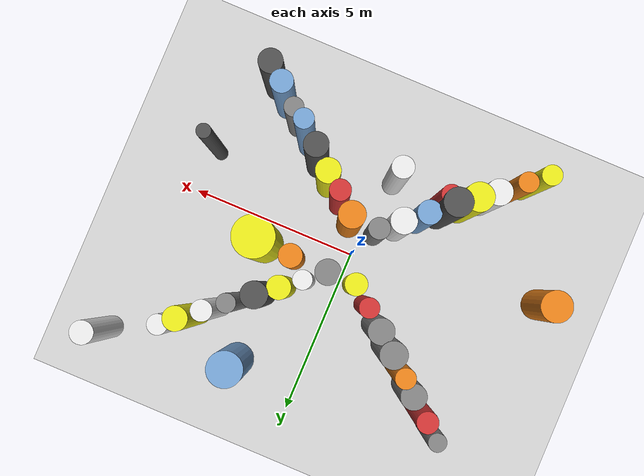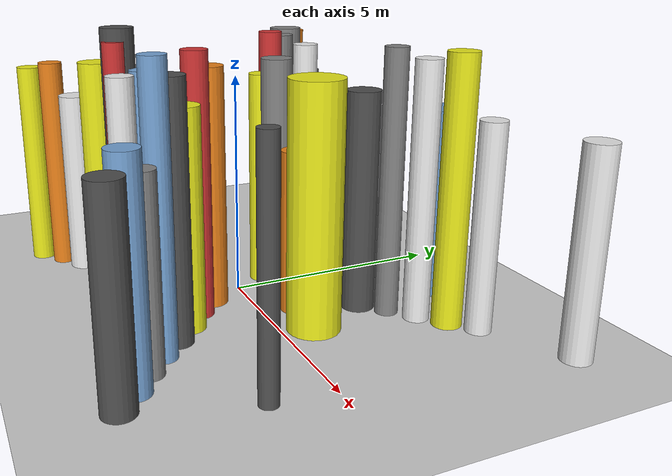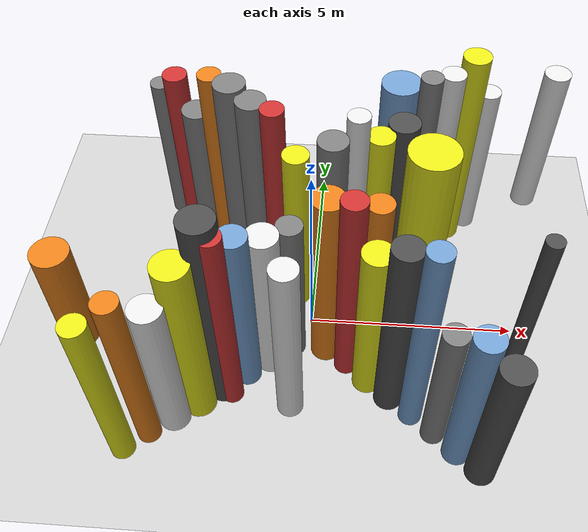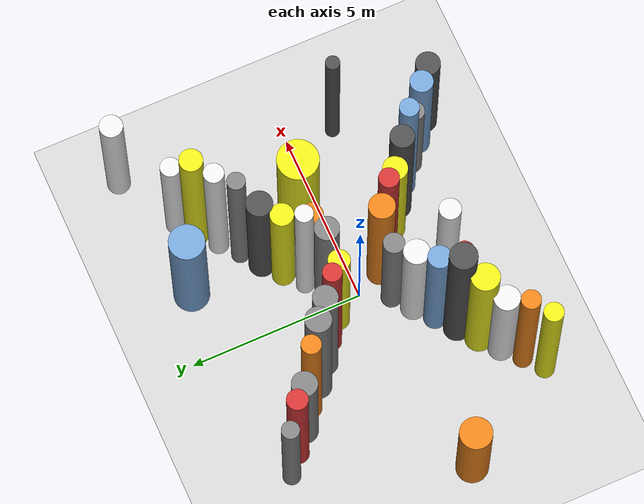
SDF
<?xml version='1.0'?>
<sdf version='1.6'>
  <world name='routeA_rl_v1__dense_recovery__rl_test__bottleneck_corridor__000112'>
    <!-- Sun light -->
    <light name='sun' type='directional'>
      <cast_shadows>1</cast_shadows>
      <pose>0 0 10 0 0 0</pose>
      <diffuse>0.8 0.8 0.8 1</diffuse>
      <specular>0.2 0.2 0.2 1</specular>
      <attenuation>
        <range>1000</range>
        <constant>0.9</constant>
        <linear>0.01</linear>
        <quadratic>0.001</quadratic>
      </attenuation>
      <direction>-0.5 0.1 -0.9</direction>
    </light>

    <!-- Ground plane -->
    <model name='ground_plane'>
      <static>1</static>
      <link name='link'>
        <collision name='collision'>
          <geometry>
            <plane>
              <normal>0 0 1</normal>
              <size>100 100</size>
            </plane>
          </geometry>
          <surface>
            <contact>
              <collide_bitmask>65535</collide_bitmask>
              <ode/>
            </contact>
            <friction>
              <ode>
                <mu>100</mu>
                <mu2>50</mu2>
              </ode>
              <torsional><ode/></torsional>
            </friction>
            <bounce/>
          </surface>
          <max_contacts>10</max_contacts>
        </collision>
        <visual name='visual'>
          <cast_shadows>0</cast_shadows>
          <geometry>
            <plane>
              <normal>0 0 1</normal>
              <size>100 100</size>
            </plane>
          </geometry>
          <material>
            <script>
              <uri>file://media/materials/scripts/gazebo.material</uri>
              <n>Gazebo/Grey</n>
            </script>
          </material>
        </visual>
      </link>
    </model>

    <!-- Environment -->
    <magnetic_field>6e-06 2.3e-05 -4.2e-05</magnetic_field>
    <atmosphere type='adiabatic'/>
    <physics name='default_physics' default='0' type='ode'>
      <gravity>0 0 -9.8</gravity>
      <max_step_size>0.004</max_step_size>
      <real_time_factor>1</real_time_factor>
      <real_time_update_rate>250</real_time_update_rate>
    </physics>
    <scene>
      <ambient>0.4 0.4 0.4 1</ambient>
      <background>0.7 0.7 0.7 1</background>
      <shadows>1</shadows>
    </scene>
    <wind/>
    <spherical_coordinates>
      <surface_model>EARTH_WGS84</surface_model>
      <latitude_deg>0</latitude_deg>
      <longitude_deg>0</longitude_deg>
      <elevation>0</elevation>
      <heading_deg>0</heading_deg>
    </spherical_coordinates>

    <!-- ============ OBSTACLES (40) ============ -->
    <model name='funnel_l_0'>
      <static>1</static>
      <link name='link'>
        <visual name='visual'>
          <geometry>
            <cylinder>
              <radius>0.2772</radius>
              <length>4.8668</length>
            </cylinder>
          </geometry>
          <material>
            <script>
              <n>Gazebo/Yellow</n>
              <uri>file://media/materials/scripts/gazebo.material</uri>
            </script>
            <ambient>0.9 0.9 0.1 1</ambient>
          </material>
        </visual>
        <collision name='collision'>
          <geometry>
            <cylinder>
              <radius>0.2772</radius>
              <length>4.8668</length>
            </cylinder>
          </geometry>
          <max_contacts>10</max_contacts>
          <surface>
            <contact><ode/></contact>
            <bounce/>
            <friction>
              <ode><mu>1</mu><mu2>1</mu2></ode>
              <torsional><ode/></torsional>
            </friction>
          </surface>
        </collision>
      </link>
      <pose>-4.0000 -3.8000 2.4334 0 0 0.0000</pose>
    </model>

    <model name='funnel_r_0'>
      <static>1</static>
      <link name='link'>
        <visual name='visual'>
          <geometry>
            <cylinder>
              <radius>0.2522</radius>
              <length>4.3261</length>
            </cylinder>
          </geometry>
          <material>
            <script>
              <n>Gazebo/Grey</n>
              <uri>file://media/materials/scripts/gazebo.material</uri>
            </script>
            <ambient>0.5 0.5 0.5 1</ambient>
          </material>
        </visual>
        <collision name='collision'>
          <geometry>
            <cylinder>
              <radius>0.2522</radius>
              <length>4.3261</length>
            </cylinder>
          </geometry>
          <max_contacts>10</max_contacts>
          <surface>
            <contact><ode/></contact>
            <bounce/>
            <friction>
              <ode><mu>1</mu><mu2>1</mu2></ode>
              <torsional><ode/></torsional>
            </friction>
          </surface>
        </collision>
      </link>
      <pose>-4.0000 3.8000 2.1631 0 0 0.0000</pose>
    </model>

    <model name='funnel_l_1'>
      <static>1</static>
      <link name='link'>
        <visual name='visual'>
          <geometry>
            <cylinder>
              <radius>0.2752</radius>
              <length>5.0197</length>
            </cylinder>
          </geometry>
          <material>
            <script>
              <n>Gazebo/Orange</n>
              <uri>file://media/materials/scripts/gazebo.material</uri>
            </script>
            <ambient>0.9 0.5 0.1 1</ambient>
          </material>
        </visual>
        <collision name='collision'>
          <geometry>
            <cylinder>
              <radius>0.2752</radius>
              <length>5.0197</length>
            </cylinder>
          </geometry>
          <max_contacts>10</max_contacts>
          <surface>
            <contact><ode/></contact>
            <bounce/>
            <friction>
              <ode><mu>1</mu><mu2>1</mu2></ode>
              <torsional><ode/></torsional>
            </friction>
          </surface>
        </collision>
      </link>
      <pose>-3.4857 -3.3714 2.5099 0 0 0.0000</pose>
    </model>

    <model name='funnel_r_1'>
      <static>1</static>
      <link name='link'>
        <visual name='visual'>
          <geometry>
            <cylinder>
              <radius>0.2951</radius>
              <length>4.9305</length>
            </cylinder>
          </geometry>
          <material>
            <script>
              <n>Gazebo/Red</n>
              <uri>file://media/materials/scripts/gazebo.material</uri>
            </script>
            <ambient>0.8 0.2 0.2 1</ambient>
          </material>
        </visual>
        <collision name='collision'>
          <geometry>
            <cylinder>
              <radius>0.2951</radius>
              <length>4.9305</length>
            </cylinder>
          </geometry>
          <max_contacts>10</max_contacts>
          <surface>
            <contact><ode/></contact>
            <bounce/>
            <friction>
              <ode><mu>1</mu><mu2>1</mu2></ode>
              <torsional><ode/></torsional>
            </friction>
          </surface>
        </collision>
      </link>
      <pose>-3.4857 3.3714 2.4653 0 0 0.0000</pose>
    </model>

    <model name='funnel_l_2'>
      <static>1</static>
      <link name='link'>
        <visual name='visual'>
          <geometry>
            <cylinder>
              <radius>0.3644</radius>
              <length>4.2887</length>
            </cylinder>
          </geometry>
          <material>
            <script>
              <n>Gazebo/White</n>
              <uri>file://media/materials/scripts/gazebo.material</uri>
            </script>
            <ambient>0.9 0.9 0.9 1</ambient>
          </material>
        </visual>
        <collision name='collision'>
          <geometry>
            <cylinder>
              <radius>0.3644</radius>
              <length>4.2887</length>
            </cylinder>
          </geometry>
          <max_contacts>10</max_contacts>
          <surface>
            <contact><ode/></contact>
            <bounce/>
            <friction>
              <ode><mu>1</mu><mu2>1</mu2></ode>
              <torsional><ode/></torsional>
            </friction>
          </surface>
        </collision>
      </link>
      <pose>-2.9714 -2.9429 2.1444 0 0 0.0000</pose>
    </model>

    <model name='funnel_r_2'>
      <static>1</static>
      <link name='link'>
        <visual name='visual'>
          <geometry>
            <cylinder>
              <radius>0.3601</radius>
              <length>4.2580</length>
            </cylinder>
          </geometry>
          <material>
            <script>
              <n>Gazebo/Grey</n>
              <uri>file://media/materials/scripts/gazebo.material</uri>
            </script>
            <ambient>0.5 0.5 0.5 1</ambient>
          </material>
        </visual>
        <collision name='collision'>
          <geometry>
            <cylinder>
              <radius>0.3601</radius>
              <length>4.2580</length>
            </cylinder>
          </geometry>
          <max_contacts>10</max_contacts>
          <surface>
            <contact><ode/></contact>
            <bounce/>
            <friction>
              <ode><mu>1</mu><mu2>1</mu2></ode>
              <torsional><ode/></torsional>
            </friction>
          </surface>
        </collision>
      </link>
      <pose>-2.9714 2.9429 2.1290 0 0 0.0000</pose>
    </model>

    <model name='funnel_l_3'>
      <static>1</static>
      <link name='link'>
        <visual name='visual'>
          <geometry>
            <cylinder>
              <radius>0.3961</radius>
              <length>5.1197</length>
            </cylinder>
          </geometry>
          <material>
            <script>
              <n>Gazebo/Yellow</n>
              <uri>file://media/materials/scripts/gazebo.material</uri>
            </script>
            <ambient>0.9 0.9 0.1 1</ambient>
          </material>
        </visual>
        <collision name='collision'>
          <geometry>
            <cylinder>
              <radius>0.3961</radius>
              <length>5.1197</length>
            </cylinder>
          </geometry>
          <max_contacts>10</max_contacts>
          <surface>
            <contact><ode/></contact>
            <bounce/>
            <friction>
              <ode><mu>1</mu><mu2>1</mu2></ode>
              <torsional><ode/></torsional>
            </friction>
          </surface>
        </collision>
      </link>
      <pose>-2.4571 -2.5143 2.5599 0 0 0.0000</pose>
    </model>

    <model name='funnel_r_3'>
      <static>1</static>
      <link name='link'>
        <visual name='visual'>
          <geometry>
            <cylinder>
              <radius>0.2758</radius>
              <length>5.6299</length>
            </cylinder>
          </geometry>
          <material>
            <script>
              <n>Gazebo/Orange</n>
              <uri>file://media/materials/scripts/gazebo.material</uri>
            </script>
            <ambient>0.9 0.5 0.1 1</ambient>
          </material>
        </visual>
        <collision name='collision'>
          <geometry>
            <cylinder>
              <radius>0.2758</radius>
              <length>5.6299</length>
            </cylinder>
          </geometry>
          <max_contacts>10</max_contacts>
          <surface>
            <contact><ode/></contact>
            <bounce/>
            <friction>
              <ode><mu>1</mu><mu2>1</mu2></ode>
              <torsional><ode/></torsional>
            </friction>
          </surface>
        </collision>
      </link>
      <pose>-2.4571 2.5143 2.8149 0 0 0.0000</pose>
    </model>

    <model name='funnel_l_4'>
      <static>1</static>
      <link name='link'>
        <visual name='visual'>
          <geometry>
            <cylinder>
              <radius>0.3856</radius>
              <length>5.9430</length>
            </cylinder>
          </geometry>
          <material>
            <script>
              <n>Gazebo/DarkGrey</n>
              <uri>file://media/materials/scripts/gazebo.material</uri>
            </script>
            <ambient>0.3 0.3 0.3 1</ambient>
          </material>
        </visual>
        <collision name='collision'>
          <geometry>
            <cylinder>
              <radius>0.3856</radius>
              <length>5.9430</length>
            </cylinder>
          </geometry>
          <max_contacts>10</max_contacts>
          <surface>
            <contact><ode/></contact>
            <bounce/>
            <friction>
              <ode><mu>1</mu><mu2>1</mu2></ode>
              <torsional><ode/></torsional>
            </friction>
          </surface>
        </collision>
      </link>
      <pose>-1.9429 -2.0857 2.9715 0 0 0.0000</pose>
    </model>

    <model name='funnel_r_4'>
      <static>1</static>
      <link name='link'>
        <visual name='visual'>
          <geometry>
            <cylinder>
              <radius>0.3671</radius>
              <length>5.7486</length>
            </cylinder>
          </geometry>
          <material>
            <script>
              <n>Gazebo/Grey</n>
              <uri>file://media/materials/scripts/gazebo.material</uri>
            </script>
            <ambient>0.5 0.5 0.5 1</ambient>
          </material>
        </visual>
        <collision name='collision'>
          <geometry>
            <cylinder>
              <radius>0.3671</radius>
              <length>5.7486</length>
            </cylinder>
          </geometry>
          <max_contacts>10</max_contacts>
          <surface>
            <contact><ode/></contact>
            <bounce/>
            <friction>
              <ode><mu>1</mu><mu2>1</mu2></ode>
              <torsional><ode/></torsional>
            </friction>
          </surface>
        </collision>
      </link>
      <pose>-1.9429 2.0857 2.8743 0 0 0.0000</pose>
    </model>

    <model name='funnel_l_5'>
      <static>1</static>
      <link name='link'>
        <visual name='visual'>
          <geometry>
            <cylinder>
              <radius>0.3276</radius>
              <length>5.0319</length>
            </cylinder>
          </geometry>
          <material>
            <script>
              <n>Gazebo/Blue</n>
              <uri>file://media/materials/scripts/gazebo.material</uri>
            </script>
            <ambient>0.447 0.624 0.812 1</ambient>
          </material>
        </visual>
        <collision name='collision'>
          <geometry>
            <cylinder>
              <radius>0.3276</radius>
              <length>5.0319</length>
            </cylinder>
          </geometry>
          <max_contacts>10</max_contacts>
          <surface>
            <contact><ode/></contact>
            <bounce/>
            <friction>
              <ode><mu>1</mu><mu2>1</mu2></ode>
              <torsional><ode/></torsional>
            </friction>
          </surface>
        </collision>
      </link>
      <pose>-1.4286 -1.6571 2.5159 0 0 0.0000</pose>
    </model>

    <model name='funnel_r_5'>
      <static>1</static>
      <link name='link'>
        <visual name='visual'>
          <geometry>
            <cylinder>
              <radius>0.3494</radius>
              <length>5.6572</length>
            </cylinder>
          </geometry>
          <material>
            <script>
              <n>Gazebo/Grey</n>
              <uri>file://media/materials/scripts/gazebo.material</uri>
            </script>
            <ambient>0.5 0.5 0.5 1</ambient>
          </material>
        </visual>
        <collision name='collision'>
          <geometry>
            <cylinder>
              <radius>0.3494</radius>
              <length>5.6572</length>
            </cylinder>
          </geometry>
          <max_contacts>10</max_contacts>
          <surface>
            <contact><ode/></contact>
            <bounce/>
            <friction>
              <ode><mu>1</mu><mu2>1</mu2></ode>
              <torsional><ode/></torsional>
            </friction>
          </surface>
        </collision>
      </link>
      <pose>-1.4286 1.6571 2.8286 0 0 0.0000</pose>
    </model>

    <model name='funnel_l_6'>
      <static>1</static>
      <link name='link'>
        <visual name='visual'>
          <geometry>
            <cylinder>
              <radius>0.3633</radius>
              <length>4.6104</length>
            </cylinder>
          </geometry>
          <material>
            <script>
              <n>Gazebo/White</n>
              <uri>file://media/materials/scripts/gazebo.material</uri>
            </script>
            <ambient>0.9 0.9 0.9 1</ambient>
          </material>
        </visual>
        <collision name='collision'>
          <geometry>
            <cylinder>
              <radius>0.3633</radius>
              <length>4.6104</length>
            </cylinder>
          </geometry>
          <max_contacts>10</max_contacts>
          <surface>
            <contact><ode/></contact>
            <bounce/>
            <friction>
              <ode><mu>1</mu><mu2>1</mu2></ode>
              <torsional><ode/></torsional>
            </friction>
          </surface>
        </collision>
      </link>
      <pose>-0.9143 -1.2286 2.3052 0 0 0.0000</pose>
    </model>

    <model name='funnel_r_6'>
      <static>1</static>
      <link name='link'>
        <visual name='visual'>
          <geometry>
            <cylinder>
              <radius>0.2693</radius>
              <length>5.8020</length>
            </cylinder>
          </geometry>
          <material>
            <script>
              <n>Gazebo/Red</n>
              <uri>file://media/materials/scripts/gazebo.material</uri>
            </script>
            <ambient>0.8 0.2 0.2 1</ambient>
          </material>
        </visual>
        <collision name='collision'>
          <geometry>
            <cylinder>
              <radius>0.2693</radius>
              <length>5.8020</length>
            </cylinder>
          </geometry>
          <max_contacts>10</max_contacts>
          <surface>
            <contact><ode/></contact>
            <bounce/>
            <friction>
              <ode><mu>1</mu><mu2>1</mu2></ode>
              <torsional><ode/></torsional>
            </friction>
          </surface>
        </collision>
      </link>
      <pose>-0.9143 1.2286 2.9010 0 0 0.0000</pose>
    </model>

    <model name='funnel_l_7'>
      <static>1</static>
      <link name='link'>
        <visual name='visual'>
          <geometry>
            <cylinder>
              <radius>0.2976</radius>
              <length>4.4727</length>
            </cylinder>
          </geometry>
          <material>
            <script>
              <n>Gazebo/Grey</n>
              <uri>file://media/materials/scripts/gazebo.material</uri>
            </script>
            <ambient>0.5 0.5 0.5 1</ambient>
          </material>
        </visual>
        <collision name='collision'>
          <geometry>
            <cylinder>
              <radius>0.2976</radius>
              <length>4.4727</length>
            </cylinder>
          </geometry>
          <max_contacts>10</max_contacts>
          <surface>
            <contact><ode/></contact>
            <bounce/>
            <friction>
              <ode><mu>1</mu><mu2>1</mu2></ode>
              <torsional><ode/></torsional>
            </friction>
          </surface>
        </collision>
      </link>
      <pose>-0.4000 -0.8000 2.2364 0 0 0.0000</pose>
    </model>

    <model name='funnel_r_7'>
      <static>1</static>
      <link name='link'>
        <visual name='visual'>
          <geometry>
            <cylinder>
              <radius>0.3056</radius>
              <length>4.9438</length>
            </cylinder>
          </geometry>
          <material>
            <script>
              <n>Gazebo/Yellow</n>
              <uri>file://media/materials/scripts/gazebo.material</uri>
            </script>
            <ambient>0.9 0.9 0.1 1</ambient>
          </material>
        </visual>
        <collision name='collision'>
          <geometry>
            <cylinder>
              <radius>0.3056</radius>
              <length>4.9438</length>
            </cylinder>
          </geometry>
          <max_contacts>10</max_contacts>
          <surface>
            <contact><ode/></contact>
            <bounce/>
            <friction>
              <ode><mu>1</mu><mu2>1</mu2></ode>
              <torsional><ode/></torsional>
            </friction>
          </surface>
        </collision>
      </link>
      <pose>-0.4000 0.8000 2.4719 0 0 0.0000</pose>
    </model>

    <model name='funnel_out_l_0'>
      <static>1</static>
      <link name='link'>
        <visual name='visual'>
          <geometry>
            <cylinder>
              <radius>0.3673</radius>
              <length>5.3352</length>
            </cylinder>
          </geometry>
          <material>
            <script>
              <n>Gazebo/Orange</n>
              <uri>file://media/materials/scripts/gazebo.material</uri>
            </script>
            <ambient>0.9 0.5 0.1 1</ambient>
          </material>
        </visual>
        <collision name='collision'>
          <geometry>
            <cylinder>
              <radius>0.3673</radius>
              <length>5.3352</length>
            </cylinder>
          </geometry>
          <max_contacts>10</max_contacts>
          <surface>
            <contact><ode/></contact>
            <bounce/>
            <friction>
              <ode><mu>1</mu><mu2>1</mu2></ode>
              <torsional><ode/></torsional>
            </friction>
          </surface>
        </collision>
      </link>
      <pose>0.4000 -0.8000 2.6676 0 0 0.0000</pose>
    </model>

    <model name='funnel_out_r_0'>
      <static>1</static>
      <link name='link'>
        <visual name='visual'>
          <geometry>
            <cylinder>
              <radius>0.3445</radius>
              <length>5.3925</length>
            </cylinder>
          </geometry>
          <material>
            <script>
              <n>Gazebo/Grey</n>
              <uri>file://media/materials/scripts/gazebo.material</uri>
            </script>
            <ambient>0.5 0.5 0.5 1</ambient>
          </material>
        </visual>
        <collision name='collision'>
          <geometry>
            <cylinder>
              <radius>0.3445</radius>
              <length>5.3925</length>
            </cylinder>
          </geometry>
          <max_contacts>10</max_contacts>
          <surface>
            <contact><ode/></contact>
            <bounce/>
            <friction>
              <ode><mu>1</mu><mu2>1</mu2></ode>
              <torsional><ode/></torsional>
            </friction>
          </surface>
        </collision>
      </link>
      <pose>0.4000 0.8000 2.6963 0 0 0.0000</pose>
    </model>

    <model name='funnel_out_l_1'>
      <static>1</static>
      <link name='link'>
        <visual name='visual'>
          <geometry>
            <cylinder>
              <radius>0.2847</radius>
              <length>5.7545</length>
            </cylinder>
          </geometry>
          <material>
            <script>
              <n>Gazebo/Red</n>
              <uri>file://media/materials/scripts/gazebo.material</uri>
            </script>
            <ambient>0.8 0.2 0.2 1</ambient>
          </material>
        </visual>
        <collision name='collision'>
          <geometry>
            <cylinder>
              <radius>0.2847</radius>
              <length>5.7545</length>
            </cylinder>
          </geometry>
          <max_contacts>10</max_contacts>
          <surface>
            <contact><ode/></contact>
            <bounce/>
            <friction>
              <ode><mu>1</mu><mu2>1</mu2></ode>
              <torsional><ode/></torsional>
            </friction>
          </surface>
        </collision>
      </link>
      <pose>0.9143 -1.2286 2.8773 0 0 0.0000</pose>
    </model>

    <model name='funnel_out_r_1'>
      <static>1</static>
      <link name='link'>
        <visual name='visual'>
          <geometry>
            <cylinder>
              <radius>0.2582</radius>
              <length>5.7257</length>
            </cylinder>
          </geometry>
          <material>
            <script>
              <n>Gazebo/White</n>
              <uri>file://media/materials/scripts/gazebo.material</uri>
            </script>
            <ambient>0.9 0.9 0.9 1</ambient>
          </material>
        </visual>
        <collision name='collision'>
          <geometry>
            <cylinder>
              <radius>0.2582</radius>
              <length>5.7257</length>
            </cylinder>
          </geometry>
          <max_contacts>10</max_contacts>
          <surface>
            <contact><ode/></contact>
            <bounce/>
            <friction>
              <ode><mu>1</mu><mu2>1</mu2></ode>
              <torsional><ode/></torsional>
            </friction>
          </surface>
        </collision>
      </link>
      <pose>0.9143 1.2286 2.8629 0 0 0.0000</pose>
    </model>

    <model name='funnel_out_l_2'>
      <static>1</static>
      <link name='link'>
        <visual name='visual'>
          <geometry>
            <cylinder>
              <radius>0.3474</radius>
              <length>4.7666</length>
            </cylinder>
          </geometry>
          <material>
            <script>
              <n>Gazebo/Yellow</n>
              <uri>file://media/materials/scripts/gazebo.material</uri>
            </script>
            <ambient>0.9 0.9 0.1 1</ambient>
          </material>
        </visual>
        <collision name='collision'>
          <geometry>
            <cylinder>
              <radius>0.3474</radius>
              <length>4.7666</length>
            </cylinder>
          </geometry>
          <max_contacts>10</max_contacts>
          <surface>
            <contact><ode/></contact>
            <bounce/>
            <friction>
              <ode><mu>1</mu><mu2>1</mu2></ode>
              <torsional><ode/></torsional>
            </friction>
          </surface>
        </collision>
      </link>
      <pose>1.4286 -1.6571 2.3833 0 0 0.0000</pose>
    </model>

    <model name='funnel_out_r_2'>
      <static>1</static>
      <link name='link'>
        <visual name='visual'>
          <geometry>
            <cylinder>
              <radius>0.3274</radius>
              <length>4.8307</length>
            </cylinder>
          </geometry>
          <material>
            <script>
              <n>Gazebo/Yellow</n>
              <uri>file://media/materials/scripts/gazebo.material</uri>
            </script>
            <ambient>0.9 0.9 0.1 1</ambient>
          </material>
        </visual>
        <collision name='collision'>
          <geometry>
            <cylinder>
              <radius>0.3274</radius>
              <length>4.8307</length>
            </cylinder>
          </geometry>
          <max_contacts>10</max_contacts>
          <surface>
            <contact><ode/></contact>
            <bounce/>
            <friction>
              <ode><mu>1</mu><mu2>1</mu2></ode>
              <torsional><ode/></torsional>
            </friction>
          </surface>
        </collision>
      </link>
      <pose>1.4286 1.6571 2.4153 0 0 0.0000</pose>
    </model>

    <model name='funnel_out_l_3'>
      <static>1</static>
      <link name='link'>
        <visual name='visual'>
          <geometry>
            <cylinder>
              <radius>0.3380</radius>
              <length>5.4639</length>
            </cylinder>
          </geometry>
          <material>
            <script>
              <n>Gazebo/DarkGrey</n>
              <uri>file://media/materials/scripts/gazebo.material</uri>
            </script>
            <ambient>0.3 0.3 0.3 1</ambient>
          </material>
        </visual>
        <collision name='collision'>
          <geometry>
            <cylinder>
              <radius>0.3380</radius>
              <length>5.4639</length>
            </cylinder>
          </geometry>
          <max_contacts>10</max_contacts>
          <surface>
            <contact><ode/></contact>
            <bounce/>
            <friction>
              <ode><mu>1</mu><mu2>1</mu2></ode>
              <torsional><ode/></torsional>
            </friction>
          </surface>
        </collision>
      </link>
      <pose>1.9429 -2.0857 2.7319 0 0 0.0000</pose>
    </model>

    <model name='funnel_out_r_3'>
      <static>1</static>
      <link name='link'>
        <visual name='visual'>
          <geometry>
            <cylinder>
              <radius>0.3706</radius>
              <length>4.8681</length>
            </cylinder>
          </geometry>
          <material>
            <script>
              <n>Gazebo/DarkGrey</n>
              <uri>file://media/materials/scripts/gazebo.material</uri>
            </script>
            <ambient>0.3 0.3 0.3 1</ambient>
          </material>
        </visual>
        <collision name='collision'>
          <geometry>
            <cylinder>
              <radius>0.3706</radius>
              <length>4.8681</length>
            </cylinder>
          </geometry>
          <max_contacts>10</max_contacts>
          <surface>
            <contact><ode/></contact>
            <bounce/>
            <friction>
              <ode><mu>1</mu><mu2>1</mu2></ode>
              <torsional><ode/></torsional>
            </friction>
          </surface>
        </collision>
      </link>
      <pose>1.9429 2.0857 2.4341 0 0 0.0000</pose>
    </model>

    <model name='funnel_out_l_4'>
      <static>1</static>
      <link name='link'>
        <visual name='visual'>
          <geometry>
            <cylinder>
              <radius>0.2708</radius>
              <length>5.9271</length>
            </cylinder>
          </geometry>
          <material>
            <script>
              <n>Gazebo/Blue</n>
              <uri>file://media/materials/scripts/gazebo.material</uri>
            </script>
            <ambient>0.447 0.624 0.812 1</ambient>
          </material>
        </visual>
        <collision name='collision'>
          <geometry>
            <cylinder>
              <radius>0.2708</radius>
              <length>5.9271</length>
            </cylinder>
          </geometry>
          <max_contacts>10</max_contacts>
          <surface>
            <contact><ode/></contact>
            <bounce/>
            <friction>
              <ode><mu>1</mu><mu2>1</mu2></ode>
              <torsional><ode/></torsional>
            </friction>
          </surface>
        </collision>
      </link>
      <pose>2.4571 -2.5143 2.9636 0 0 0.0000</pose>
    </model>

    <model name='funnel_out_r_4'>
      <static>1</static>
      <link name='link'>
        <visual name='visual'>
          <geometry>
            <cylinder>
              <radius>0.2548</radius>
              <length>5.7984</length>
            </cylinder>
          </geometry>
          <material>
            <script>
              <n>Gazebo/Grey</n>
              <uri>file://media/materials/scripts/gazebo.material</uri>
            </script>
            <ambient>0.5 0.5 0.5 1</ambient>
          </material>
        </visual>
        <collision name='collision'>
          <geometry>
            <cylinder>
              <radius>0.2548</radius>
              <length>5.7984</length>
            </cylinder>
          </geometry>
          <max_contacts>10</max_contacts>
          <surface>
            <contact><ode/></contact>
            <bounce/>
            <friction>
              <ode><mu>1</mu><mu2>1</mu2></ode>
              <torsional><ode/></torsional>
            </friction>
          </surface>
        </collision>
      </link>
      <pose>2.4571 2.5143 2.8992 0 0 0.0000</pose>
    </model>

    <model name='funnel_out_l_5'>
      <static>1</static>
      <link name='link'>
        <visual name='visual'>
          <geometry>
            <cylinder>
              <radius>0.2785</radius>
              <length>4.0391</length>
            </cylinder>
          </geometry>
          <material>
            <script>
              <n>Gazebo/Grey</n>
              <uri>file://media/materials/scripts/gazebo.material</uri>
            </script>
            <ambient>0.5 0.5 0.5 1</ambient>
          </material>
        </visual>
        <collision name='collision'>
          <geometry>
            <cylinder>
              <radius>0.2785</radius>
              <length>4.0391</length>
            </cylinder>
          </geometry>
          <max_contacts>10</max_contacts>
          <surface>
            <contact><ode/></contact>
            <bounce/>
            <friction>
              <ode><mu>1</mu><mu2>1</mu2></ode>
              <torsional><ode/></torsional>
            </friction>
          </surface>
        </collision>
      </link>
      <pose>2.9714 -2.9429 2.0196 0 0 0.0000</pose>
    </model>

    <model name='funnel_out_r_5'>
      <static>1</static>
      <link name='link'>
        <visual name='visual'>
          <geometry>
            <cylinder>
              <radius>0.2861</radius>
              <length>5.6031</length>
            </cylinder>
          </geometry>
          <material>
            <script>
              <n>Gazebo/White</n>
              <uri>file://media/materials/scripts/gazebo.material</uri>
            </script>
            <ambient>0.9 0.9 0.9 1</ambient>
          </material>
        </visual>
        <collision name='collision'>
          <geometry>
            <cylinder>
              <radius>0.2861</radius>
              <length>5.6031</length>
            </cylinder>
          </geometry>
          <max_contacts>10</max_contacts>
          <surface>
            <contact><ode/></contact>
            <bounce/>
            <friction>
              <ode><mu>1</mu><mu2>1</mu2></ode>
              <torsional><ode/></torsional>
            </friction>
          </surface>
        </collision>
      </link>
      <pose>2.9714 2.9429 2.8016 0 0 0.0000</pose>
    </model>

    <model name='funnel_out_l_6'>
      <static>1</static>
      <link name='link'>
        <visual name='visual'>
          <geometry>
            <cylinder>
              <radius>0.3244</radius>
              <length>4.5828</length>
            </cylinder>
          </geometry>
          <material>
            <script>
              <n>Gazebo/Blue</n>
              <uri>file://media/materials/scripts/gazebo.material</uri>
            </script>
            <ambient>0.447 0.624 0.812 1</ambient>
          </material>
        </visual>
        <collision name='collision'>
          <geometry>
            <cylinder>
              <radius>0.3244</radius>
              <length>4.5828</length>
            </cylinder>
          </geometry>
          <max_contacts>10</max_contacts>
          <surface>
            <contact><ode/></contact>
            <bounce/>
            <friction>
              <ode><mu>1</mu><mu2>1</mu2></ode>
              <torsional><ode/></torsional>
            </friction>
          </surface>
        </collision>
      </link>
      <pose>3.4857 -3.3714 2.2914 0 0 0.0000</pose>
    </model>

    <model name='funnel_out_r_6'>
      <static>1</static>
      <link name='link'>
        <visual name='visual'>
          <geometry>
            <cylinder>
              <radius>0.3280</radius>
              <length>5.7862</length>
            </cylinder>
          </geometry>
          <material>
            <script>
              <n>Gazebo/Yellow</n>
              <uri>file://media/materials/scripts/gazebo.material</uri>
            </script>
            <ambient>0.9 0.9 0.1 1</ambient>
          </material>
        </visual>
        <collision name='collision'>
          <geometry>
            <cylinder>
              <radius>0.3280</radius>
              <length>5.7862</length>
            </cylinder>
          </geometry>
          <max_contacts>10</max_contacts>
          <surface>
            <contact><ode/></contact>
            <bounce/>
            <friction>
              <ode><mu>1</mu><mu2>1</mu2></ode>
              <torsional><ode/></torsional>
            </friction>
          </surface>
        </collision>
      </link>
      <pose>3.4857 3.3714 2.8931 0 0 0.0000</pose>
    </model>

    <model name='funnel_out_l_7'>
      <static>1</static>
      <link name='link'>
        <visual name='visual'>
          <geometry>
            <cylinder>
              <radius>0.3453</radius>
              <length>4.2850</length>
            </cylinder>
          </geometry>
          <material>
            <script>
              <n>Gazebo/DarkGrey</n>
              <uri>file://media/materials/scripts/gazebo.material</uri>
            </script>
            <ambient>0.3 0.3 0.3 1</ambient>
          </material>
        </visual>
        <collision name='collision'>
          <geometry>
            <cylinder>
              <radius>0.3453</radius>
              <length>4.2850</length>
            </cylinder>
          </geometry>
          <max_contacts>10</max_contacts>
          <surface>
            <contact><ode/></contact>
            <bounce/>
            <friction>
              <ode><mu>1</mu><mu2>1</mu2></ode>
              <torsional><ode/></torsional>
            </friction>
          </surface>
        </collision>
      </link>
      <pose>4.0000 -3.8000 2.1425 0 0 0.0000</pose>
    </model>

    <model name='funnel_out_r_7'>
      <static>1</static>
      <link name='link'>
        <visual name='visual'>
          <geometry>
            <cylinder>
              <radius>0.2833</radius>
              <length>4.4937</length>
            </cylinder>
          </geometry>
          <material>
            <script>
              <n>Gazebo/White</n>
              <uri>file://media/materials/scripts/gazebo.material</uri>
            </script>
            <ambient>0.9 0.9 0.9 1</ambient>
          </material>
        </visual>
        <collision name='collision'>
          <geometry>
            <cylinder>
              <radius>0.2833</radius>
              <length>4.4937</length>
            </cylinder>
          </geometry>
          <max_contacts>10</max_contacts>
          <surface>
            <contact><ode/></contact>
            <bounce/>
            <friction>
              <ode><mu>1</mu><mu2>1</mu2></ode>
              <torsional><ode/></torsional>
            </friction>
          </surface>
        </collision>
      </link>
      <pose>4.0000 3.8000 2.2468 0 0 0.0000</pose>
    </model>

    <model name='bn_scatter_0'>
      <static>1</static>
      <link name='link'>
        <visual name='visual'>
          <geometry>
            <cylinder>
              <radius>0.4569</radius>
              <length>3.1737</length>
            </cylinder>
          </geometry>
          <material>
            <script>
              <n>Gazebo/Orange</n>
              <uri>file://media/materials/scripts/gazebo.material</uri>
            </script>
            <ambient>0.9 0.5 0.1 1</ambient>
          </material>
        </visual>
        <collision name='collision'>
          <geometry>
            <cylinder>
              <radius>0.4569</radius>
              <length>3.1737</length>
            </cylinder>
          </geometry>
          <max_contacts>10</max_contacts>
          <surface>
            <contact><ode/></contact>
            <bounce/>
            <friction>
              <ode><mu>1</mu><mu2>1</mu2></ode>
              <torsional><ode/></torsional>
            </friction>
          </surface>
        </collision>
      </link>
      <pose>-5.7554 -0.7996 1.5869 0 0 0.0000</pose>
    </model>

    <model name='bn_scatter_1'>
      <static>1</static>
      <link name='link'>
        <visual name='visual'>
          <geometry>
            <cylinder>
              <radius>0.2027</radius>
              <length>5.0098</length>
            </cylinder>
          </geometry>
          <material>
            <script>
              <n>Gazebo/DarkGrey</n>
              <uri>file://media/materials/scripts/gazebo.material</uri>
            </script>
            <ambient>0.3 0.3 0.3 1</ambient>
          </material>
        </visual>
        <collision name='collision'>
          <geometry>
            <cylinder>
              <radius>0.2027</radius>
              <length>5.0098</length>
            </cylinder>
          </geometry>
          <max_contacts>10</max_contacts>
          <surface>
            <contact><ode/></contact>
            <bounce/>
            <friction>
              <ode><mu>1</mu><mu2>1</mu2></ode>
              <torsional><ode/></torsional>
            </friction>
          </surface>
        </collision>
      </link>
      <pose>4.7985 -1.3241 2.5049 0 0 0.0000</pose>
    </model>

    <model name='bn_scatter_2'>
      <static>1</static>
      <link name='link'>
        <visual name='visual'>
          <geometry>
            <cylinder>
              <radius>0.5032</radius>
              <length>4.3153</length>
            </cylinder>
          </geometry>
          <material>
            <script>
              <n>Gazebo/Blue</n>
              <uri>file://media/materials/scripts/gazebo.material</uri>
            </script>
            <ambient>0.447 0.624 0.812 1</ambient>
          </material>
        </visual>
        <collision name='collision'>
          <geometry>
            <cylinder>
              <radius>0.5032</radius>
              <length>4.3153</length>
            </cylinder>
          </geometry>
          <max_contacts>10</max_contacts>
          <surface>
            <contact><ode/></contact>
            <bounce/>
            <friction>
              <ode><mu>1</mu><mu2>1</mu2></ode>
              <torsional><ode/></torsional>
            </friction>
          </surface>
        </collision>
      </link>
      <pose>1.9219 4.2182 2.1576 0 0 0.0000</pose>
    </model>

    <model name='bn_scatter_3'>
      <static>1</static>
      <link name='link'>
        <visual name='visual'>
          <geometry>
            <cylinder>
              <radius>0.3296</radius>
              <length>4.3788</length>
            </cylinder>
          </geometry>
          <material>
            <script>
              <n>Gazebo/White</n>
              <uri>file://media/materials/scripts/gazebo.material</uri>
            </script>
            <ambient>0.9 0.9 0.9 1</ambient>
          </material>
        </visual>
        <collision name='collision'>
          <geometry>
            <cylinder>
              <radius>0.3296</radius>
              <length>4.3788</length>
            </cylinder>
          </geometry>
          <max_contacts>10</max_contacts>
          <surface>
            <contact><ode/></contact>
            <bounce/>
            <friction>
              <ode><mu>1</mu><mu2>1</mu2></ode>
              <torsional><ode/></torsional>
            </friction>
          </surface>
        </collision>
      </link>
      <pose>5.7728 4.7806 2.1894 0 0 0.0000</pose>
    </model>

    <model name='bn_scatter_4'>
      <static>1</static>
      <link name='link'>
        <visual name='visual'>
          <geometry>
            <cylinder>
              <radius>0.5790</radius>
              <length>5.3097</length>
            </cylinder>
          </geometry>
          <material>
            <script>
              <n>Gazebo/Yellow</n>
              <uri>file://media/materials/scripts/gazebo.material</uri>
            </script>
            <ambient>0.9 0.9 0.1 1</ambient>
          </material>
        </visual>
        <collision name='collision'>
          <geometry>
            <cylinder>
              <radius>0.5790</radius>
              <length>5.3097</length>
            </cylinder>
          </geometry>
          <max_contacts>10</max_contacts>
          <surface>
            <contact><ode/></contact>
            <bounce/>
            <friction>
              <ode><mu>1</mu><mu2>1</mu2></ode>
              <torsional><ode/></torsional>
            </friction>
          </surface>
        </collision>
      </link>
      <pose>2.5212 0.7008 2.6548 0 0 0.0000</pose>
    </model>

    <model name='bn_scatter_5'>
      <static>1</static>
      <link name='link'>
        <visual name='visual'>
          <geometry>
            <cylinder>
              <radius>0.3373</radius>
              <length>3.6220</length>
            </cylinder>
          </geometry>
          <material>
            <script>
              <n>Gazebo/Orange</n>
              <uri>file://media/materials/scripts/gazebo.material</uri>
            </script>
            <ambient>0.9 0.5 0.1 1</ambient>
          </material>
        </visual>
        <collision name='collision'>
          <geometry>
            <cylinder>
              <radius>0.3373</radius>
              <length>3.6220</length>
            </cylinder>
          </geometry>
          <max_contacts>10</max_contacts>
          <surface>
            <contact><ode/></contact>
            <bounce/>
            <friction>
              <ode><mu>1</mu><mu2>1</mu2></ode>
              <torsional><ode/></torsional>
            </friction>
          </surface>
        </collision>
      </link>
      <pose>1.5198 0.7640 1.8110 0 0 0.0000</pose>
    </model>

    <model name='bn_scatter_6'>
      <static>1</static>
      <link name='link'>
        <visual name='visual'>
          <geometry>
            <cylinder>
              <radius>0.2603</radius>
              <length>5.6517</length>
            </cylinder>
          </geometry>
          <material>
            <script>
              <n>Gazebo/Red</n>
              <uri>file://media/materials/scripts/gazebo.material</uri>
            </script>
            <ambient>0.8 0.2 0.2 1</ambient>
          </material>
        </visual>
        <collision name='collision'>
          <geometry>
            <cylinder>
              <radius>0.2603</radius>
              <length>5.6517</length>
            </cylinder>
          </geometry>
          <max_contacts>10</max_contacts>
          <surface>
            <contact><ode/></contact>
            <bounce/>
            <friction>
              <ode><mu>1</mu><mu2>1</mu2></ode>
              <torsional><ode/></torsional>
            </friction>
          </surface>
        </collision>
      </link>
      <pose>-1.7195 -2.2314 2.8259 0 0 0.0000</pose>
    </model>

    <model name='bn_scatter_7'>
      <static>1</static>
      <link name='link'>
        <visual name='visual'>
          <geometry>
            <cylinder>
              <radius>0.3066</radius>
              <length>5.1155</length>
            </cylinder>
          </geometry>
          <material>
            <script>
              <n>Gazebo/White</n>
              <uri>file://media/materials/scripts/gazebo.material</uri>
            </script>
            <ambient>0.9 0.9 0.9 1</ambient>
          </material>
        </visual>
        <collision name='collision'>
          <geometry>
            <cylinder>
              <radius>0.3066</radius>
              <length>5.1155</length>
            </cylinder>
          </geometry>
          <max_contacts>10</max_contacts>
          <surface>
            <contact><ode/></contact>
            <bounce/>
            <friction>
              <ode><mu>1</mu><mu2>1</mu2></ode>
              <torsional><ode/></torsional>
            </friction>
          </surface>
        </collision>
      </link>
      <pose>-0.3358 -2.4580 2.5578 0 0 0.0000</pose>
    </model>

    <!-- GUI camera -->
    <gui fullscreen='0'>
      <camera name='user_camera'>
        <pose>-15 0 18 0 0.85 0.15</pose>
        <view_controller>orbit</view_controller>
        <projection_type>perspective</projection_type>
      </camera>
    </gui>
  </world>
</sdf>
